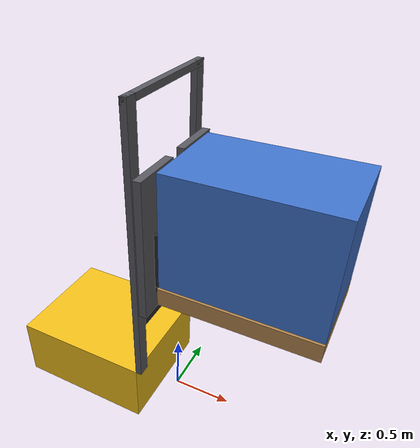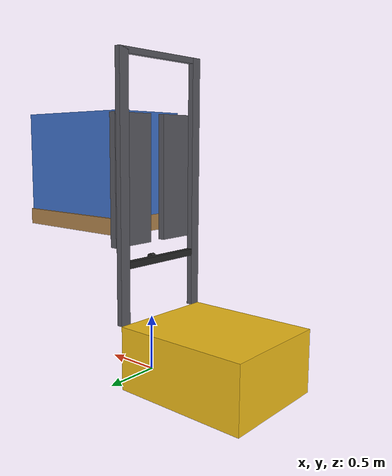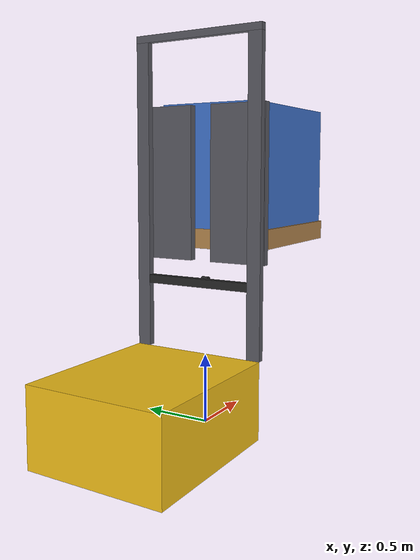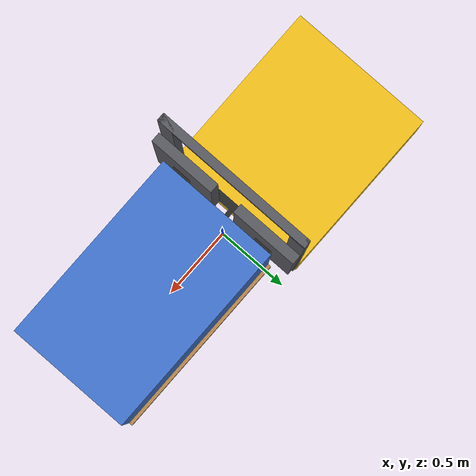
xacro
<?xml version="1.0"?>
<robot name="agf_clearance" xmlns:xacro="http://www.ros.org/wiki/xacro">

  <xacro:arg name="lidar_height" default="1.05"/>
  <xacro:arg name="lidar_y"      default="0.0"/>
  <xacro:arg name="carried_load" default="0.9"/>   <!-- load height on the carried pallet; 0 = empty pallet -->
  <xacro:arg name="carry_pallet" default="true"/>
  <xacro:arg name="lift_zero"    default="1.40"/>

  <xacro:property name="lidar_height" value="$(arg lidar_height)"/>
  <xacro:property name="lidar_y"      value="$(arg lidar_y)"/>
  <xacro:property name="carried_load" value="$(arg carried_load)"/>
  <xacro:property name="lift_zero"    value="$(arg lift_zero)"/>

  <xacro:property name="PAL_L"  value="1.2"/>
  <xacro:property name="PAL_W"  value="0.8"/>
  <xacro:property name="PAL_H"  value="0.144"/>
  <xacro:property name="DECK"   value="0.122"/>   <!-- fork top -> carried pallet underside -->
  <xacro:property name="FORK_L" value="1.15"/>
  <xacro:property name="FORK_T" value="0.045"/>
  <xacro:property name="FORK_W" value="0.12"/>
  <xacro:property name="FORK_Y" value="0.3"/>

  <material name="agf_yellow"><color rgba="0.95 0.75 0.10 1"/></material>
  <material name="steel"><color rgba="0.35 0.35 0.38 1"/></material>
  <material name="dark"><color rgba="0.15 0.15 0.15 1"/></material>
  <material name="wood"><color rgba="0.70 0.52 0.30 1"/></material>
  <material name="load_blue"><color rgba="0.25 0.45 0.80 1"/></material>

  <!-- Axis-aligned box from (x0,y0,z0) to (x1,y1,z1) in the link frame. -->
  <xacro:macro name="abox" params="x0 x1 y0 y1 z0 z1 mat col:=true">
    <visual>
      <origin xyz="${(x0+x1)/2} ${(y0+y1)/2} ${(z0+z1)/2}"/>
      <geometry><box size="${x1-x0} ${y1-y0} ${z1-z0}"/></geometry>
      <material name="${mat}"/>
    </visual>
    <xacro:if value="${col}">
      <collision>
        <origin xyz="${(x0+x1)/2} ${(y0+y1)/2} ${(z0+z1)/2}"/>
        <geometry><box size="${x1-x0} ${y1-y0} ${z1-z0}"/></geometry>
      </collision>
    </xacro:if>
  </xacro:macro>

  <xacro:macro name="box_inertial" params="m x y z cx cy cz">
    <inertial>
      <origin xyz="${cx} ${cy} ${cz}"/>
      <mass value="${m}"/>
      <inertia ixx="${m*(y*y+z*z)/12}" ixy="0" ixz="0"
               iyy="${m*(x*x+z*z)/12}" iyz="0" izz="${m*(x*x+y*y)/12}"/>
    </inertial>
  </xacro:macro>

  <!-- ================================================================ drive rail -->
  <!-- The AGF runs on a prismatic rail along world x (effort-limited velocity control):
       it cannot climb over or tip on the stack, so a collision simply stalls it. -->
  <link name="world"/>

  <joint name="rail_joint" type="prismatic">
    <parent link="world"/>
    <child link="base_footprint"/>
    <axis xyz="1 0 0"/>
    <limit lower="-2.0" upper="6.0" effort="20000" velocity="1.0"/>
  </joint>

  <transmission name="rail_trans">
    <type>transmission_interface/SimpleTransmission</type>
    <joint name="rail_joint">
      <hardwareInterface>hardware_interface/EffortJointInterface</hardwareInterface>
    </joint>
    <actuator name="drive_motor">
      <hardwareInterface>hardware_interface/EffortJointInterface</hardwareInterface>
      <mechanicalReduction>1</mechanicalReduction>
    </actuator>
  </transmission>

  <!-- ================================================================ chassis + mast -->
  <link name="base_footprint"/>

  <joint name="base_joint" type="fixed">
    <parent link="base_footprint"/>
    <child link="base_link"/>
  </joint>

  <link name="base_link">
    <xacro:box_inertial m="3000" x="1.2" y="1.0" z="0.6" cx="-0.7" cy="0" cz="0.3"/>
    <!-- chassis (5 mm above the floor: the rail carries it) -->
    <xacro:abox x0="-1.30" x1="-0.13" y0="-0.50" y1="0.50" z0="0.005" z1="0.55" mat="agf_yellow"/>
    <!-- mast uprights, outside the scan plane -->
    <xacro:abox x0="-0.13" x1="-0.08" y0="0.40"  y1="0.50"  z0="0.55" z1="2.80" mat="steel"/>
    <xacro:abox x0="-0.13" x1="-0.08" y0="-0.50" y1="-0.40" z0="0.55" z1="2.80" mat="steel"/>
    <xacro:abox x0="-0.13" x1="-0.08" y0="-0.50" y1="0.50"  z0="2.75" z1="2.80" mat="steel" col="false"/>
    <!-- LiDAR bracket (visual only) -->
    <xacro:abox x0="-0.13" x1="-0.08" y0="-0.40" y1="0.40"
                z0="${lidar_height-0.03}" z1="${lidar_height+0.03}" mat="dark" col="false"/>
    <xacro:abox x0="-0.08" x1="-0.03" y0="${lidar_y-0.015}" y1="${lidar_y+0.015}"
                z0="${lidar_height-0.015}" z1="${lidar_height+0.015}" mat="dark" col="false"/>
  </link>

  <!-- ================================================================ fork carriage -->
  <joint name="lift_joint" type="prismatic">
    <parent link="base_link"/>
    <child link="fork_carriage"/>
    <origin xyz="0 0 ${lift_zero}"/>
    <axis xyz="0 0 1"/>
    <limit lower="${0.20 - lift_zero}" upper="${2.20 - lift_zero}" effort="100000" velocity="0.5"/>
    <dynamics damping="100.0"/>
  </joint>

  <link name="fork_carriage">
    <xacro:box_inertial m="50" x="1.2" y="1.0" z="1.0" cx="0.4" cy="0" cz="0.2"/>
    <!-- carriage plates, gap at |y| < 0.08 for the LiDAR plane -->
    <xacro:abox x0="-0.07" x1="-0.01" y0="0.08"  y1="0.50"  z0="-0.20" z1="0.90" mat="steel"/>
    <xacro:abox x0="-0.07" x1="-0.01" y0="-0.50" y1="-0.08" z0="-0.20" z1="0.90" mat="steel"/>
    <!-- forks: tine + shank -->
    <xacro:abox x0="-0.01" x1="${FORK_L}" y0="${FORK_Y-FORK_W/2}"  y1="${FORK_Y+FORK_W/2}"
                z0="${-FORK_T}" z1="0" mat="dark"/>
    <xacro:abox x0="-0.01" x1="${FORK_L}" y0="${-FORK_Y-FORK_W/2}" y1="${-FORK_Y+FORK_W/2}"
                z0="${-FORK_T}" z1="0" mat="dark"/>
    <xacro:abox x0="-0.01" x1="0.035" y0="${FORK_Y-FORK_W/2}"  y1="${FORK_Y+FORK_W/2}"
                z0="0" z1="0.45" mat="dark"/>
    <xacro:abox x0="-0.01" x1="0.035" y0="${-FORK_Y-FORK_W/2}" y1="${-FORK_Y+FORK_W/2}"
                z0="0" z1="0.45" mat="dark"/>
    <!-- carried pallet + load (solid blocks, as in fake_scan_pub.py) -->
    <xacro:if value="$(arg carry_pallet)">
      <xacro:abox x0="0.03" x1="${0.03+PAL_L}" y0="${-PAL_W/2}" y1="${PAL_W/2}"
                  z0="${-DECK}" z1="${PAL_H-DECK}" mat="wood"/>
      <xacro:if value="${carried_load > 0}">
        <xacro:abox x0="0.03" x1="${0.03+PAL_L}" y0="${-PAL_W/2+0.02}" y1="${PAL_W/2-0.02}"
                    z0="${PAL_H-DECK}" z1="${PAL_H-DECK+carried_load}" mat="load_blue"/>
      </xacro:if>
    </xacro:if>
  </link>

  <transmission name="lift_trans">
    <type>transmission_interface/SimpleTransmission</type>
    <joint name="lift_joint">
      <hardwareInterface>hardware_interface/PositionJointInterface</hardwareInterface>
    </joint>
    <actuator name="lift_motor">
      <hardwareInterface>hardware_interface/PositionJointInterface</hardwareInterface>
      <mechanicalReduction>1</mechanicalReduction>
    </actuator>
  </transmission>

  <!-- ================================================================ vertical LiDAR -->
  <joint name="lidar_joint" type="fixed">
    <parent link="base_link"/>
    <child link="lidar_vertical"/>
    <origin xyz="0 ${lidar_y} ${lidar_height}" rpy="${pi/2} 0 0"/>
  </joint>

  <link name="lidar_vertical">
    <xacro:box_inertial m="0.3" x="0.06" y="0.06" z="0.06" cx="0" cy="0" cz="0"/>
    <visual>
      <geometry><cylinder radius="0.03" length="0.05"/></geometry>
      <material name="dark"/>
    </visual>
    <!-- no collision: the sensor must not see itself -->
  </link>

  <!-- ================================================================ gazebo -->
  <gazebo reference="fork_carriage">
    <!-- the lift is position-controlled (teleported) every step -->
    <turnGravityOff>true</turnGravityOff>
  </gazebo>

  <gazebo reference="base_link">
    <sensor type="ray" name="lidar_vertical">
      <pose>0 ${lidar_y} ${lidar_height} ${pi/2} 0 0</pose>
      <visualize>false</visualize>
      <update_rate>15</update_rate>
      <ray>
        <scan>
          <horizontal>
            <samples>541</samples>
            <resolution>1</resolution>
            <min_angle>-2.35619</min_angle>
            <max_angle>2.35619</max_angle>
          </horizontal>
        </scan>
        <range>
          <min>0.05</min>
          <max>10.0</max>
          <resolution>0.001</resolution>
        </range>
        <noise>
          <type>gaussian</type>
          <mean>0.0</mean>
          <stddev>0.005</stddev>
        </noise>
      </ray>
      <plugin name="lidar_vertical_ros" filename="libgazebo_ros_laser.so">
        <topicName>/lidar_vertical/scan</topicName>
        <frameName>lidar_vertical</frameName>
      </plugin>
    </sensor>
  </gazebo>

  <gazebo>
    <plugin name="gazebo_ros_control" filename="libgazebo_ros_control.so">
      <robotNamespace>/agf</robotNamespace>
      <legacyModeNS>true</legacyModeNS>
    </plugin>
  </gazebo>
</robot>
